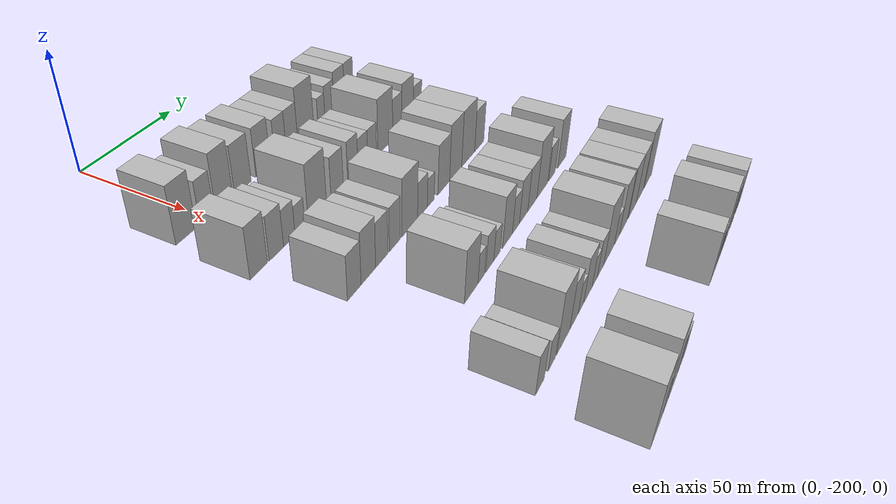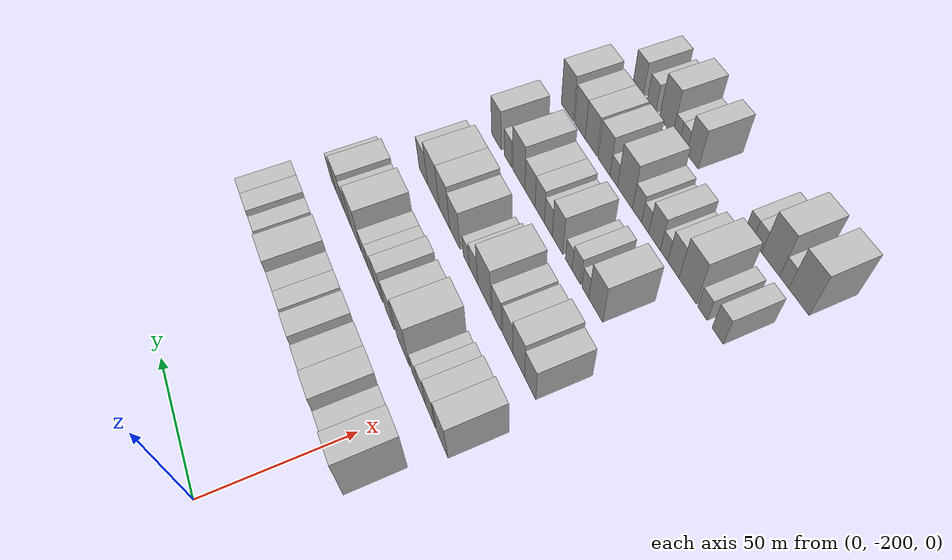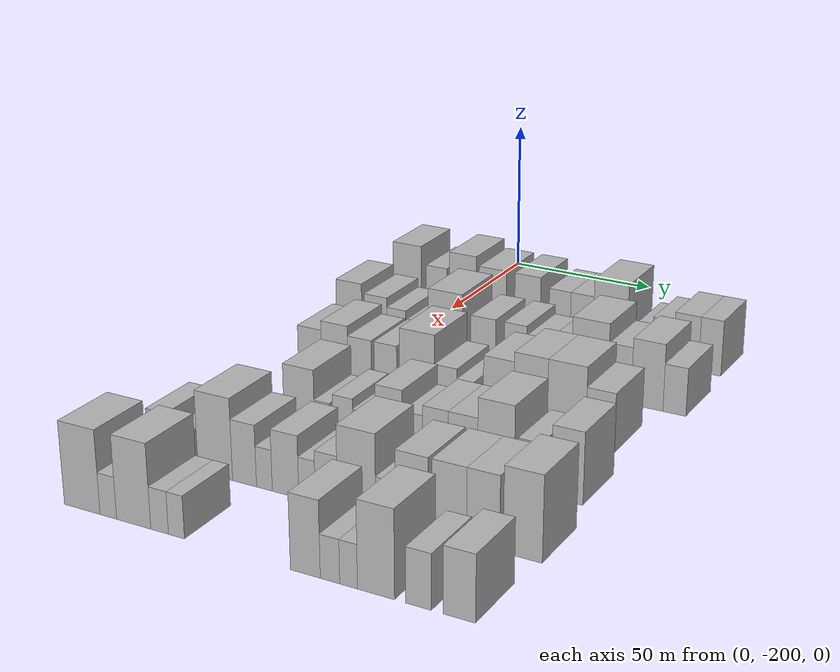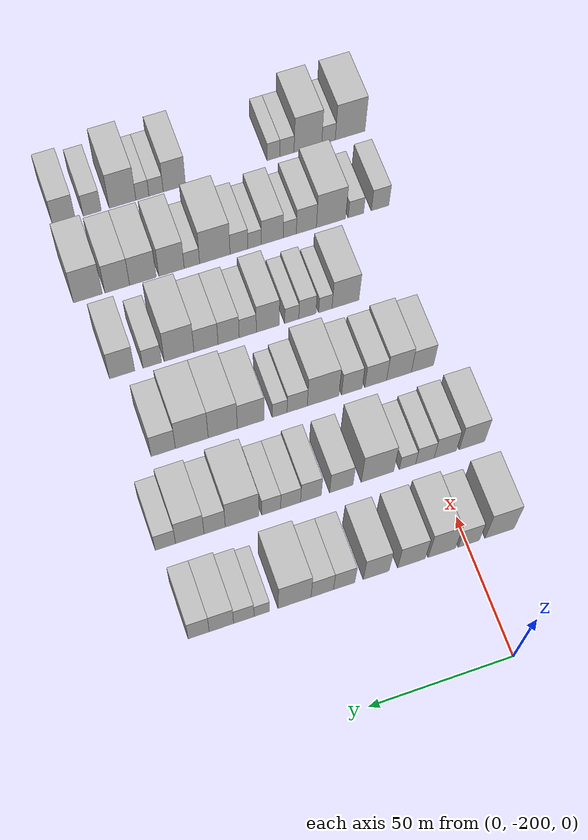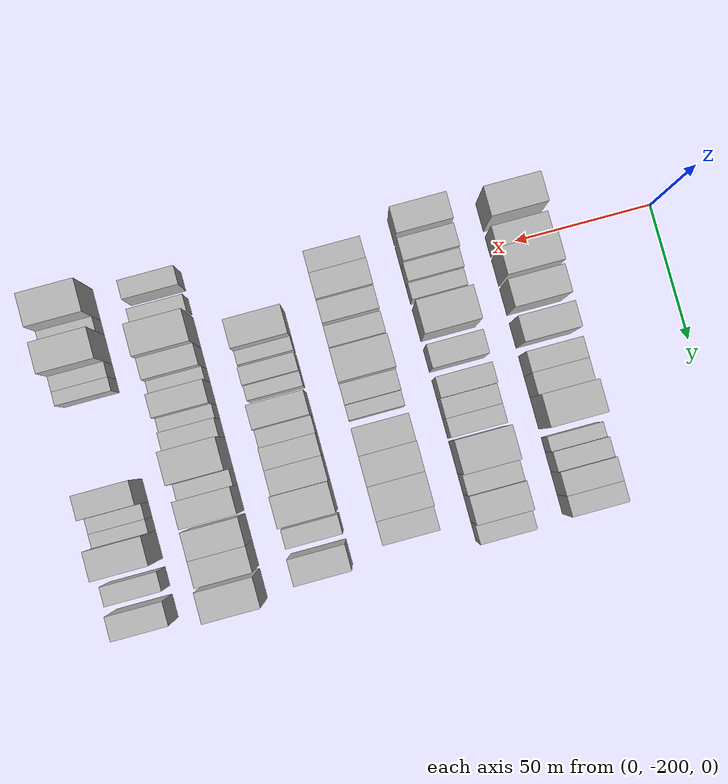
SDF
<sdf version="1.6">
 <world name="default">
  <model name="building_38">
   <static>1</static>
   <pose>50.0000 -211.4565 0 0.000000 0.000000 0.000000</pose>
   <link name="link">
    <pose>0 0 12.00 0 0 0</pose>
    <collision name="collision"><geometry><box><size>20.0000 10.4695 24.0000</size></box></geometry></collision>
    <visual name="visual">
     <cast_shadows>0</cast_shadows>
     <geometry><box><size>20.0000 10.4695 24.0000</size></box></geometry>
     <material>
      <script>
       <uri>model://HANNAS_wall/materials/scripts</uri>
       <uri>model://HANNAS_wall/materials/textures</uri>
       <name>vrc/HANNAS_wall</name>
      </script>
     </material>
    </visual>
   </link>
  </model>
  <model name="building_39">
   <static>1</static>
   <pose>50.0000 -200.4383 0 0.000000 0.000000 0.000000</pose>
   <link name="link">
    <pose>0 0 9.00 0 0 0</pose>
    <collision name="collision"><geometry><box><size>20.0000 7.5668 18.0000</size></box></geometry></collision>
    <visual name="visual">
     <cast_shadows>0</cast_shadows>
     <geometry><box><size>20.0000 7.5668 18.0000</size></box></geometry>
     <material>
      <script>
       <uri>model://HANNAS_wall/materials/scripts</uri>
       <uri>model://HANNAS_wall/materials/textures</uri>
       <name>vrc/HANNAS_wall</name>
      </script>
     </material>
    </visual>
   </link>
  </model>
  <model name="building_40">
   <static>1</static>
   <pose>50.0000 -190.7735 0 0.000000 0.000000 0.000000</pose>
   <link name="link">
    <pose>0 0 12.00 0 0 0</pose>
    <collision name="collision"><geometry><box><size>20.0000 9.7627 24.0000</size></box></geometry></collision>
    <visual name="visual">
     <cast_shadows>0</cast_shadows>
     <geometry><box><size>20.0000 9.7627 24.0000</size></box></geometry>
     <material>
      <script>
       <uri>model://HANNAS_wall/materials/scripts</uri>
       <uri>model://HANNAS_wall/materials/textures</uri>
       <name>vrc/HANNAS_wall</name>
      </script>
     </material>
    </visual>
   </link>
  </model>
  <model name="building_41">
   <static>1</static>
   <pose>50.0000 -179.9747 0 0.000000 0.000000 0.000000</pose>
   <link name="link">
    <pose>0 0 10.50 0 0 0</pose>
    <collision name="collision"><geometry><box><size>20.0000 9.8350 21.0000</size></box></geometry></collision>
    <visual name="visual">
     <cast_shadows>0</cast_shadows>
     <geometry><box><size>20.0000 9.8350 21.0000</size></box></geometry>
     <material>
      <script>
       <uri>model://HANNAS_wall/materials/scripts</uri>
       <uri>model://HANNAS_wall/materials/textures</uri>
       <name>vrc/HANNAS_wall</name>
      </script>
     </material>
    </visual>
   </link>
  </model>
  <model name="building_42">
   <static>1</static>
   <pose>50.0000 -167.4942 0 0.000000 0.000000 0.000000</pose>
   <link name="link">
    <pose>0 0 10.50 0 0 0</pose>
    <collision name="collision"><geometry><box><size>20.0000 9.1260 21.0000</size></box></geometry></collision>
    <visual name="visual">
     <cast_shadows>0</cast_shadows>
     <geometry><box><size>20.0000 9.1260 21.0000</size></box></geometry>
     <material>
      <script>
       <uri>model://HANNAS_wall/materials/scripts</uri>
       <uri>model://HANNAS_wall/materials/textures</uri>
       <name>vrc/HANNAS_wall</name>
      </script>
     </material>
    </visual>
   </link>
  </model>
  <model name="building_43">
   <static>1</static>
   <pose>50.0000 -156.1961 0 0.000000 0.000000 0.000000</pose>
   <link name="link">
    <pose>0 0 9.00 0 0 0</pose>
    <collision name="collision"><geometry><box><size>20.0000 7.4702 18.0000</size></box></geometry></collision>
    <visual name="visual">
     <cast_shadows>0</cast_shadows>
     <geometry><box><size>20.0000 7.4702 18.0000</size></box></geometry>
     <material>
      <script>
       <uri>model://HANNAS_wall/materials/scripts</uri>
       <uri>model://HANNAS_wall/materials/textures</uri>
       <name>vrc/HANNAS_wall</name>
      </script>
     </material>
    </visual>
   </link>
  </model>
  <model name="building_44">
   <static>1</static>
   <pose>50.0000 -148.5323 0 0.000000 0.000000 0.000000</pose>
   <link name="link">
    <pose>0 0 9.00 0 0 0</pose>
    <collision name="collision"><geometry><box><size>20.0000 7.8573 18.0000</size></box></geometry></collision>
    <visual name="visual">
     <cast_shadows>0</cast_shadows>
     <geometry><box><size>20.0000 7.8573 18.0000</size></box></geometry>
     <material>
      <script>
       <uri>model://HANNAS_wall/materials/scripts</uri>
       <uri>model://HANNAS_wall/materials/textures</uri>
       <name>vrc/HANNAS_wall</name>
      </script>
     </material>
    </visual>
   </link>
  </model>
  <model name="building_45">
   <static>1</static>
   <pose>50.0000 -138.8615 0 0.000000 0.000000 0.000000</pose>
   <link name="link">
    <pose>0 0 12.00 0 0 0</pose>
    <collision name="collision"><geometry><box><size>20.0000 11.4843 24.0000</size></box></geometry></collision>
    <visual name="visual">
     <cast_shadows>0</cast_shadows>
     <geometry><box><size>20.0000 11.4843 24.0000</size></box></geometry>
     <material>
      <script>
       <uri>model://HANNAS_wall/materials/scripts</uri>
       <uri>model://HANNAS_wall/materials/textures</uri>
       <name>vrc/HANNAS_wall</name>
      </script>
     </material>
    </visual>
   </link>
  </model>
  <model name="building_46">
   <static>1</static>
   <pose>50.0000 -127.4503 0 0.000000 0.000000 0.000000</pose>
   <link name="link">
    <pose>0 0 6.00 0 0 0</pose>
    <collision name="collision"><geometry><box><size>20.0000 5.3382 12.0000</size></box></geometry></collision>
    <visual name="visual">
     <cast_shadows>0</cast_shadows>
     <geometry><box><size>20.0000 5.3382 12.0000</size></box></geometry>
     <material>
      <script>
       <uri>model://HANNAS_wall/materials/scripts</uri>
       <uri>model://HANNAS_wall/materials/textures</uri>
       <name>vrc/HANNAS_wall</name>
      </script>
     </material>
    </visual>
   </link>
  </model>
  <model name="building_47">
   <static>1</static>
   <pose>50.0000 -121.2465 0 0.000000 0.000000 0.000000</pose>
   <link name="link">
    <pose>0 0 7.50 0 0 0</pose>
    <collision name="collision"><geometry><box><size>20.0000 7.0693 15.0000</size></box></geometry></collision>
    <visual name="visual">
     <cast_shadows>0</cast_shadows>
     <geometry><box><size>20.0000 7.0693 15.0000</size></box></geometry>
     <material>
      <script>
       <uri>model://HANNAS_wall/materials/scripts</uri>
       <uri>model://HANNAS_wall/materials/textures</uri>
       <name>vrc/HANNAS_wall</name>
      </script>
     </material>
    </visual>
   </link>
  </model>
  <model name="building_48">
   <static>1</static>
   <pose>50.0000 -113.5370 0 0.000000 0.000000 0.000000</pose>
   <link name="link">
    <pose>0 0 9.00 0 0 0</pose>
    <collision name="collision"><geometry><box><size>20.0000 8.3497 18.0000</size></box></geometry></collision>
    <visual name="visual">
     <cast_shadows>0</cast_shadows>
     <geometry><box><size>20.0000 8.3497 18.0000</size></box></geometry>
     <material>
      <script>
       <uri>model://HANNAS_wall/materials/scripts</uri>
       <uri>model://HANNAS_wall/materials/textures</uri>
       <name>vrc/HANNAS_wall</name>
      </script>
     </material>
    </visual>
   </link>
  </model>
  <model name="building_49">
   <static>1</static>
   <pose>50.0000 -105.7563 0 0.000000 0.000000 0.000000</pose>
   <link name="link">
    <pose>0 0 9.00 0 0 0</pose>
    <collision name="collision"><geometry><box><size>20.0000 7.2116 18.0000</size></box></geometry></collision>
    <visual name="visual">
     <cast_shadows>0</cast_shadows>
     <geometry><box><size>20.0000 7.2116 18.0000</size></box></geometry>
     <material>
      <script>
       <uri>model://HANNAS_wall/materials/scripts</uri>
       <uri>model://HANNAS_wall/materials/textures</uri>
       <name>vrc/HANNAS_wall</name>
      </script>
     </material>
    </visual>
   </link>
  </model>
  <model name="building_156">
   <static>1</static>
   <pose>82.0000 -214.3716 0 0.000000 0.000000 0.000000</pose>
   <link name="link">
    <pose>0 0 10.50 0 0 0</pose>
    <collision name="collision"><geometry><box><size>20.0000 9.3521 21.0000</size></box></geometry></collision>
    <visual name="visual">
     <cast_shadows>0</cast_shadows>
     <geometry><box><size>20.0000 9.3521 21.0000</size></box></geometry>
     <material>
      <script>
       <uri>model://HANNAS_wall/materials/scripts</uri>
       <uri>model://HANNAS_wall/materials/textures</uri>
       <name>vrc/HANNAS_wall</name>
      </script>
     </material>
    </visual>
   </link>
  </model>
  <model name="building_157">
   <static>1</static>
   <pose>82.0000 -204.6196 0 0.000000 0.000000 0.000000</pose>
   <link name="link">
    <pose>0 0 9.00 0 0 0</pose>
    <collision name="collision"><geometry><box><size>20.0000 8.1518 18.0000</size></box></geometry></collision>
    <visual name="visual">
     <cast_shadows>0</cast_shadows>
     <geometry><box><size>20.0000 8.1518 18.0000</size></box></geometry>
     <material>
      <script>
       <uri>model://HANNAS_wall/materials/scripts</uri>
       <uri>model://HANNAS_wall/materials/textures</uri>
       <name>vrc/HANNAS_wall</name>
      </script>
     </material>
    </visual>
   </link>
  </model>
  <model name="building_158">
   <static>1</static>
   <pose>82.0000 -197.1738 0 0.000000 0.000000 0.000000</pose>
   <link name="link">
    <pose>0 0 7.50 0 0 0</pose>
    <collision name="collision"><geometry><box><size>20.0000 6.7398 15.0000</size></box></geometry></collision>
    <visual name="visual">
     <cast_shadows>0</cast_shadows>
     <geometry><box><size>20.0000 6.7398 15.0000</size></box></geometry>
     <material>
      <script>
       <uri>model://HANNAS_wall/materials/scripts</uri>
       <uri>model://HANNAS_wall/materials/textures</uri>
       <name>vrc/HANNAS_wall</name>
      </script>
     </material>
    </visual>
   </link>
  </model>
  <model name="building_159">
   <static>1</static>
   <pose>82.0000 -190.8170 0 0.000000 0.000000 0.000000</pose>
   <link name="link">
    <pose>0 0 6.00 0 0 0</pose>
    <collision name="collision"><geometry><box><size>20.0000 5.9738 12.0000</size></box></geometry></collision>
    <visual name="visual">
     <cast_shadows>0</cast_shadows>
     <geometry><box><size>20.0000 5.9738 12.0000</size></box></geometry>
     <material>
      <script>
       <uri>model://HANNAS_wall/materials/scripts</uri>
       <uri>model://HANNAS_wall/materials/textures</uri>
       <name>vrc/HANNAS_wall</name>
      </script>
     </material>
    </visual>
   </link>
  </model>
  <model name="building_160">
   <static>1</static>
   <pose>82.0000 -179.9579 0 0.000000 0.000000 0.000000</pose>
   <link name="link">
    <pose>0 0 12.00 0 0 0</pose>
    <collision name="collision"><geometry><box><size>20.0000 11.7444 24.0000</size></box></geometry></collision>
    <visual name="visual">
     <cast_shadows>0</cast_shadows>
     <geometry><box><size>20.0000 11.7444 24.0000</size></box></geometry>
     <material>
      <script>
       <uri>model://HANNAS_wall/materials/scripts</uri>
       <uri>model://HANNAS_wall/materials/textures</uri>
       <name>vrc/HANNAS_wall</name>
      </script>
     </material>
    </visual>
   </link>
  </model>
  <model name="building_161">
   <static>1</static>
   <pose>82.0000 -166.8854 0 0.000000 0.000000 0.000000</pose>
   <link name="link">
    <pose>0 0 9.00 0 0 0</pose>
    <collision name="collision"><geometry><box><size>20.0000 8.4005 18.0000</size></box></geometry></collision>
    <visual name="visual">
     <cast_shadows>0</cast_shadows>
     <geometry><box><size>20.0000 8.4005 18.0000</size></box></geometry>
     <material>
      <script>
       <uri>model://HANNAS_wall/materials/scripts</uri>
       <uri>model://HANNAS_wall/materials/textures</uri>
       <name>vrc/HANNAS_wall</name>
      </script>
     </material>
    </visual>
   </link>
  </model>
  <model name="building_162">
   <static>1</static>
   <pose>82.0000 -155.9896 0 0.000000 0.000000 0.000000</pose>
   <link name="link">
    <pose>0 0 9.00 0 0 0</pose>
    <collision name="collision"><geometry><box><size>20.0000 7.3910 18.0000</size></box></geometry></collision>
    <visual name="visual">
     <cast_shadows>0</cast_shadows>
     <geometry><box><size>20.0000 7.3910 18.0000</size></box></geometry>
     <material>
      <script>
       <uri>model://HANNAS_wall/materials/scripts</uri>
       <uri>model://HANNAS_wall/materials/textures</uri>
       <name>vrc/HANNAS_wall</name>
      </script>
     </material>
    </visual>
   </link>
  </model>
  <model name="building_163">
   <static>1</static>
   <pose>82.0000 -148.7459 0 0.000000 0.000000 0.000000</pose>
   <link name="link">
    <pose>0 0 7.50 0 0 0</pose>
    <collision name="collision"><geometry><box><size>20.0000 7.0965 15.0000</size></box></geometry></collision>
    <visual name="visual">
     <cast_shadows>0</cast_shadows>
     <geometry><box><size>20.0000 7.0965 15.0000</size></box></geometry>
     <material>
      <script>
       <uri>model://HANNAS_wall/materials/scripts</uri>
       <uri>model://HANNAS_wall/materials/textures</uri>
       <name>vrc/HANNAS_wall</name>
      </script>
     </material>
    </visual>
   </link>
  </model>
  <model name="building_164">
   <static>1</static>
   <pose>82.0000 -141.8310 0 0.000000 0.000000 0.000000</pose>
   <link name="link">
    <pose>0 0 7.50 0 0 0</pose>
    <collision name="collision"><geometry><box><size>20.0000 6.7332 15.0000</size></box></geometry></collision>
    <visual name="visual">
     <cast_shadows>0</cast_shadows>
     <geometry><box><size>20.0000 6.7332 15.0000</size></box></geometry>
     <material>
      <script>
       <uri>model://HANNAS_wall/materials/scripts</uri>
       <uri>model://HANNAS_wall/materials/textures</uri>
       <name>vrc/HANNAS_wall</name>
      </script>
     </material>
    </visual>
   </link>
  </model>
  <model name="building_165">
   <static>1</static>
   <pose>82.0000 -131.5374 0 0.000000 0.000000 0.000000</pose>
   <link name="link">
    <pose>0 0 12.00 0 0 0</pose>
    <collision name="collision"><geometry><box><size>20.0000 11.8540 24.0000</size></box></geometry></collision>
    <visual name="visual">
     <cast_shadows>0</cast_shadows>
     <geometry><box><size>20.0000 11.8540 24.0000</size></box></geometry>
     <material>
      <script>
       <uri>model://HANNAS_wall/materials/scripts</uri>
       <uri>model://HANNAS_wall/materials/textures</uri>
       <name>vrc/HANNAS_wall</name>
      </script>
     </material>
    </visual>
   </link>
  </model>
  <model name="building_166">
   <static>1</static>
   <pose>82.0000 -121.8860 0 0.000000 0.000000 0.000000</pose>
   <link name="link">
    <pose>0 0 9.00 0 0 0</pose>
    <collision name="collision"><geometry><box><size>20.0000 7.4489 18.0000</size></box></geometry></collision>
    <visual name="visual">
     <cast_shadows>0</cast_shadows>
     <geometry><box><size>20.0000 7.4489 18.0000</size></box></geometry>
     <material>
      <script>
       <uri>model://HANNAS_wall/materials/scripts</uri>
       <uri>model://HANNAS_wall/materials/textures</uri>
       <name>vrc/HANNAS_wall</name>
      </script>
     </material>
    </visual>
   </link>
  </model>
  <model name="building_167">
   <static>1</static>
   <pose>82.0000 -113.1577 0 0.000000 0.000000 0.000000</pose>
   <link name="link">
    <pose>0 0 10.50 0 0 0</pose>
    <collision name="collision"><geometry><box><size>20.0000 10.0077 21.0000</size></box></geometry></collision>
    <visual name="visual">
     <cast_shadows>0</cast_shadows>
     <geometry><box><size>20.0000 10.0077 21.0000</size></box></geometry>
     <material>
      <script>
       <uri>model://HANNAS_wall/materials/scripts</uri>
       <uri>model://HANNAS_wall/materials/textures</uri>
       <name>vrc/HANNAS_wall</name>
      </script>
     </material>
    </visual>
   </link>
  </model>
  <model name="building_168">
   <static>1</static>
   <pose>82.0000 -104.5958 0 0.000000 0.000000 0.000000</pose>
   <link name="link">
    <pose>0 0 7.50 0 0 0</pose>
    <collision name="collision"><geometry><box><size>20.0000 7.1160 15.0000</size></box></geometry></collision>
    <visual name="visual">
     <cast_shadows>0</cast_shadows>
     <geometry><box><size>20.0000 7.1160 15.0000</size></box></geometry>
     <material>
      <script>
       <uri>model://HANNAS_wall/materials/scripts</uri>
       <uri>model://HANNAS_wall/materials/textures</uri>
       <name>vrc/HANNAS_wall</name>
      </script>
     </material>
    </visual>
   </link>
  </model>
  <model name="building_280">
   <static>1</static>
   <pose>114.0000 -208.6316 0 0.000000 0.000000 0.000000</pose>
   <link name="link">
    <pose>0 0 9.00 0 0 0</pose>
    <collision name="collision"><geometry><box><size>20.0000 8.2622 18.0000</size></box></geometry></collision>
    <visual name="visual">
     <cast_shadows>0</cast_shadows>
     <geometry><box><size>20.0000 8.2622 18.0000</size></box></geometry>
     <material>
      <script>
       <uri>model://HANNAS_wall/materials/scripts</uri>
       <uri>model://HANNAS_wall/materials/textures</uri>
       <name>vrc/HANNAS_wall</name>
      </script>
     </material>
    </visual>
   </link>
  </model>
  <model name="building_281">
   <static>1</static>
   <pose>114.0000 -199.9115 0 0.000000 0.000000 0.000000</pose>
   <link name="link">
    <pose>0 0 10.50 0 0 0</pose>
    <collision name="collision"><geometry><box><size>20.0000 9.1779 21.0000</size></box></geometry></collision>
    <visual name="visual">
     <cast_shadows>0</cast_shadows>
     <geometry><box><size>20.0000 9.1779 21.0000</size></box></geometry>
     <material>
      <script>
       <uri>model://HANNAS_wall/materials/scripts</uri>
       <uri>model://HANNAS_wall/materials/textures</uri>
       <name>vrc/HANNAS_wall</name>
      </script>
     </material>
    </visual>
   </link>
  </model>
  <model name="building_282">
   <static>1</static>
   <pose>114.0000 -191.2991 0 0.000000 0.000000 0.000000</pose>
   <link name="link">
    <pose>0 0 9.00 0 0 0</pose>
    <collision name="collision"><geometry><box><size>20.0000 8.0470 18.0000</size></box></geometry></collision>
    <visual name="visual">
     <cast_shadows>0</cast_shadows>
     <geometry><box><size>20.0000 8.0470 18.0000</size></box></geometry>
     <material>
      <script>
       <uri>model://HANNAS_wall/materials/scripts</uri>
       <uri>model://HANNAS_wall/materials/textures</uri>
       <name>vrc/HANNAS_wall</name>
      </script>
     </material>
    </visual>
   </link>
  </model>
  <model name="building_283">
   <static>1</static>
   <pose>114.0000 -182.4864 0 0.000000 0.000000 0.000000</pose>
   <link name="link">
    <pose>0 0 9.00 0 0 0</pose>
    <collision name="collision"><geometry><box><size>20.0000 7.5783 18.0000</size></box></geometry></collision>
    <visual name="visual">
     <cast_shadows>0</cast_shadows>
     <geometry><box><size>20.0000 7.5783 18.0000</size></box></geometry>
     <material>
      <script>
       <uri>model://HANNAS_wall/materials/scripts</uri>
       <uri>model://HANNAS_wall/materials/textures</uri>
       <name>vrc/HANNAS_wall</name>
      </script>
     </material>
    </visual>
   </link>
  </model>
  <model name="building_284">
   <static>1</static>
   <pose>114.0000 -171.9044 0 0.000000 0.000000 0.000000</pose>
   <link name="link">
    <pose>0 0 12.00 0 0 0</pose>
    <collision name="collision"><geometry><box><size>20.0000 11.5858 24.0000</size></box></geometry></collision>
    <visual name="visual">
     <cast_shadows>0</cast_shadows>
     <geometry><box><size>20.0000 11.5858 24.0000</size></box></geometry>
     <material>
      <script>
       <uri>model://HANNAS_wall/materials/scripts</uri>
       <uri>model://HANNAS_wall/materials/textures</uri>
       <name>vrc/HANNAS_wall</name>
      </script>
     </material>
    </visual>
   </link>
  </model>
  <model name="building_285">
   <static>1</static>
   <pose>114.0000 -162.4385 0 0.000000 0.000000 0.000000</pose>
   <link name="link">
    <pose>0 0 7.50 0 0 0</pose>
    <collision name="collision"><geometry><box><size>20.0000 7.3460 15.0000</size></box></geometry></collision>
    <visual name="visual">
     <cast_shadows>0</cast_shadows>
     <geometry><box><size>20.0000 7.3460 15.0000</size></box></geometry>
     <material>
      <script>
       <uri>model://HANNAS_wall/materials/scripts</uri>
       <uri>model://HANNAS_wall/materials/textures</uri>
       <name>vrc/HANNAS_wall</name>
      </script>
     </material>
    </visual>
   </link>
  </model>
  <model name="building_286">
   <static>1</static>
   <pose>114.0000 -156.0570 0 0.000000 0.000000 0.000000</pose>
   <link name="link">
    <pose>0 0 6.00 0 0 0</pose>
    <collision name="collision"><geometry><box><size>20.0000 5.4169 12.0000</size></box></geometry></collision>
    <visual name="visual">
     <cast_shadows>0</cast_shadows>
     <geometry><box><size>20.0000 5.4169 12.0000</size></box></geometry>
     <material>
      <script>
       <uri>model://HANNAS_wall/materials/scripts</uri>
       <uri>model://HANNAS_wall/materials/textures</uri>
       <name>vrc/HANNAS_wall</name>
      </script>
     </material>
    </visual>
   </link>
  </model>
  <model name="building_287">
   <static>1</static>
   <pose>114.0000 -145.5136 0 0.000000 0.000000 0.000000</pose>
   <link name="link">
    <pose>0 0 10.50 0 0 0</pose>
    <collision name="collision"><geometry><box><size>20.0000 9.6700 21.0000</size></box></geometry></collision>
    <visual name="visual">
     <cast_shadows>0</cast_shadows>
     <geometry><box><size>20.0000 9.6700 21.0000</size></box></geometry>
     <material>
      <script>
       <uri>model://HANNAS_wall/materials/scripts</uri>
       <uri>model://HANNAS_wall/materials/textures</uri>
       <name>vrc/HANNAS_wall</name>
      </script>
     </material>
    </visual>
   </link>
  </model>
  <model name="building_288">
   <static>1</static>
   <pose>114.0000 -135.4417 0 0.000000 0.000000 0.000000</pose>
   <link name="link">
    <pose>0 0 12.00 0 0 0</pose>
    <collision name="collision"><geometry><box><size>20.0000 10.4738 24.0000</size></box></geometry></collision>
    <visual name="visual">
     <cast_shadows>0</cast_shadows>
     <geometry><box><size>20.0000 10.4738 24.0000</size></box></geometry>
     <material>
      <script>
       <uri>model://HANNAS_wall/materials/scripts</uri>
       <uri>model://HANNAS_wall/materials/textures</uri>
       <name>vrc/HANNAS_wall</name>
      </script>
     </material>
    </visual>
   </link>
  </model>
  <model name="building_289">
   <static>1</static>
   <pose>114.0000 -124.3099 0 0.000000 0.000000 0.000000</pose>
   <link name="link">
    <pose>0 0 12.00 0 0 0</pose>
    <collision name="collision"><geometry><box><size>20.0000 11.7898 24.0000</size></box></geometry></collision>
    <visual name="visual">
     <cast_shadows>0</cast_shadows>
     <geometry><box><size>20.0000 11.7898 24.0000</size></box></geometry>
     <material>
      <script>
       <uri>model://HANNAS_wall/materials/scripts</uri>
       <uri>model://HANNAS_wall/materials/textures</uri>
       <name>vrc/HANNAS_wall</name>
      </script>
     </material>
    </visual>
   </link>
  </model>
  <model name="building_290">
   <static>1</static>
   <pose>114.0000 -114.0748 0 0.000000 0.000000 0.000000</pose>
   <link name="link">
    <pose>0 0 9.00 0 0 0</pose>
    <collision name="collision"><geometry><box><size>20.0000 8.6804 18.0000</size></box></geometry></collision>
    <visual name="visual">
     <cast_shadows>0</cast_shadows>
     <geometry><box><size>20.0000 8.6804 18.0000</size></box></geometry>
     <material>
      <script>
       <uri>model://HANNAS_wall/materials/scripts</uri>
       <uri>model://HANNAS_wall/materials/textures</uri>
       <name>vrc/HANNAS_wall</name>
      </script>
     </material>
    </visual>
   </link>
  </model>
  <model name="building_399">
   <static>1</static>
   <pose>146.0000 -191.8766 0 0.000000 0.000000 0.000000</pose>
   <link name="link">
    <pose>0 0 10.50 0 0 0</pose>
    <collision name="collision"><geometry><box><size>20.0000 10.1219 21.0000</size></box></geometry></collision>
    <visual name="visual">
     <cast_shadows>0</cast_shadows>
     <geometry><box><size>20.0000 10.1219 21.0000</size></box></geometry>
     <material>
      <script>
       <uri>model://HANNAS_wall/materials/scripts</uri>
       <uri>model://HANNAS_wall/materials/textures</uri>
       <name>vrc/HANNAS_wall</name>
      </script>
     </material>
    </visual>
   </link>
  </model>
  <model name="building_400">
   <static>1</static>
   <pose>146.0000 -184.3137 0 0.000000 0.000000 0.000000</pose>
   <link name="link">
    <pose>0 0 6.00 0 0 0</pose>
    <collision name="collision"><geometry><box><size>20.0000 5.0039 12.0000</size></box></geometry></collision>
    <visual name="visual">
     <cast_shadows>0</cast_shadows>
     <geometry><box><size>20.0000 5.0039 12.0000</size></box></geometry>
     <material>
      <script>
       <uri>model://HANNAS_wall/materials/scripts</uri>
       <uri>model://HANNAS_wall/materials/textures</uri>
       <name>vrc/HANNAS_wall</name>
      </script>
     </material>
    </visual>
   </link>
  </model>
  <model name="building_401">
   <static>1</static>
   <pose>146.0000 -177.5903 0 0.000000 0.000000 0.000000</pose>
   <link name="link">
    <pose>0 0 7.50 0 0 0</pose>
    <collision name="collision"><geometry><box><size>20.0000 6.4430 15.0000</size></box></geometry></collision>
    <visual name="visual">
     <cast_shadows>0</cast_shadows>
     <geometry><box><size>20.0000 6.4430 15.0000</size></box></geometry>
     <material>
      <script>
       <uri>model://HANNAS_wall/materials/scripts</uri>
       <uri>model://HANNAS_wall/materials/textures</uri>
       <name>vrc/HANNAS_wall</name>
      </script>
     </material>
    </visual>
   </link>
  </model>
  <model name="building_402">
   <static>1</static>
   <pose>146.0000 -171.7303 0 0.000000 0.000000 0.000000</pose>
   <link name="link">
    <pose>0 0 6.00 0 0 0</pose>
    <collision name="collision"><geometry><box><size>20.0000 5.2770 12.0000</size></box></geometry></collision>
    <visual name="visual">
     <cast_shadows>0</cast_shadows>
     <geometry><box><size>20.0000 5.2770 12.0000</size></box></geometry>
     <material>
      <script>
       <uri>model://HANNAS_wall/materials/scripts</uri>
       <uri>model://HANNAS_wall/materials/textures</uri>
       <name>vrc/HANNAS_wall</name>
      </script>
     </material>
    </visual>
   </link>
  </model>
  <model name="building_403">
   <static>1</static>
   <pose>146.0000 -162.8242 0 0.000000 0.000000 0.000000</pose>
   <link name="link">
    <pose>0 0 10.50 0 0 0</pose>
    <collision name="collision"><geometry><box><size>20.0000 8.5352 21.0000</size></box></geometry></collision>
    <visual name="visual">
     <cast_shadows>0</cast_shadows>
     <geometry><box><size>20.0000 8.5352 21.0000</size></box></geometry>
     <material>
      <script>
       <uri>model://HANNAS_wall/materials/scripts</uri>
       <uri>model://HANNAS_wall/materials/textures</uri>
       <name>vrc/HANNAS_wall</name>
      </script>
     </material>
    </visual>
   </link>
  </model>
  <model name="building_404">
   <static>1</static>
   <pose>146.0000 -155.3909 0 0.000000 0.000000 0.000000</pose>
   <link name="link">
    <pose>0 0 7.50 0 0 0</pose>
    <collision name="collision"><geometry><box><size>20.0000 6.3313 15.0000</size></box></geometry></collision>
    <visual name="visual">
     <cast_shadows>0</cast_shadows>
     <geometry><box><size>20.0000 6.3313 15.0000</size></box></geometry>
     <material>
      <script>
       <uri>model://HANNAS_wall/materials/scripts</uri>
       <uri>model://HANNAS_wall/materials/textures</uri>
       <name>vrc/HANNAS_wall</name>
      </script>
     </material>
    </visual>
   </link>
  </model>
  <model name="building_405">
   <static>1</static>
   <pose>146.0000 -148.3162 0 0.000000 0.000000 0.000000</pose>
   <link name="link">
    <pose>0 0 9.00 0 0 0</pose>
    <collision name="collision"><geometry><box><size>20.0000 7.8180 18.0000</size></box></geometry></collision>
    <visual name="visual">
     <cast_shadows>0</cast_shadows>
     <geometry><box><size>20.0000 7.8180 18.0000</size></box></geometry>
     <material>
      <script>
       <uri>model://HANNAS_wall/materials/scripts</uri>
       <uri>model://HANNAS_wall/materials/textures</uri>
       <name>vrc/HANNAS_wall</name>
      </script>
     </material>
    </visual>
   </link>
  </model>
  <model name="building_406">
   <static>1</static>
   <pose>146.0000 -139.9772 0 0.000000 0.000000 0.000000</pose>
   <link name="link">
    <pose>0 0 9.00 0 0 0</pose>
    <collision name="collision"><geometry><box><size>20.0000 8.8600 18.0000</size></box></geometry></collision>
    <visual name="visual">
     <cast_shadows>0</cast_shadows>
     <geometry><box><size>20.0000 8.8600 18.0000</size></box></geometry>
     <material>
      <script>
       <uri>model://HANNAS_wall/materials/scripts</uri>
       <uri>model://HANNAS_wall/materials/textures</uri>
       <name>vrc/HANNAS_wall</name>
      </script>
     </material>
    </visual>
   </link>
  </model>
  <model name="building_407">
   <static>1</static>
   <pose>146.0000 -130.1047 0 0.000000 0.000000 0.000000</pose>
   <link name="link">
    <pose>0 0 12.00 0 0 0</pose>
    <collision name="collision"><geometry><box><size>20.0000 10.8850 24.0000</size></box></geometry></collision>
    <visual name="visual">
     <cast_shadows>0</cast_shadows>
     <geometry><box><size>20.0000 10.8850 24.0000</size></box></geometry>
     <material>
      <script>
       <uri>model://HANNAS_wall/materials/scripts</uri>
       <uri>model://HANNAS_wall/materials/textures</uri>
       <name>vrc/HANNAS_wall</name>
      </script>
     </material>
    </visual>
   </link>
  </model>
  <model name="building_408">
   <static>1</static>
   <pose>146.0000 -120.2781 0 0.000000 0.000000 0.000000</pose>
   <link name="link">
    <pose>0 0 7.50 0 0 0</pose>
    <collision name="collision"><geometry><box><size>20.0000 6.7683 15.0000</size></box></geometry></collision>
    <visual name="visual">
     <cast_shadows>0</cast_shadows>
     <geometry><box><size>20.0000 6.7683 15.0000</size></box></geometry>
     <material>
      <script>
       <uri>model://HANNAS_wall/materials/scripts</uri>
       <uri>model://HANNAS_wall/materials/textures</uri>
       <name>vrc/HANNAS_wall</name>
      </script>
     </material>
    </visual>
   </link>
  </model>
  <model name="building_409">
   <static>1</static>
   <pose>146.0000 -109.3045 0 0.000000 0.000000 0.000000</pose>
   <link name="link">
    <pose>0 0 10.50 0 0 0</pose>
    <collision name="collision"><geometry><box><size>20.0000 9.1788 21.0000</size></box></geometry></collision>
    <visual name="visual">
     <cast_shadows>0</cast_shadows>
     <geometry><box><size>20.0000 9.1788 21.0000</size></box></geometry>
     <material>
      <script>
       <uri>model://HANNAS_wall/materials/scripts</uri>
       <uri>model://HANNAS_wall/materials/textures</uri>
       <name>vrc/HANNAS_wall</name>
      </script>
     </material>
    </visual>
   </link>
  </model>
  <model name="building_516">
   <static>1</static>
   <pose>178.0000 -217.0044 0 0.000000 0.000000 0.000000</pose>
   <link name="link">
    <pose>0 0 7.50 0 0 0</pose>
    <collision name="collision"><geometry><box><size>20.0000 6.7690 15.0000</size></box></geometry></collision>
    <visual name="visual">
     <cast_shadows>0</cast_shadows>
     <geometry><box><size>20.0000 6.7690 15.0000</size></box></geometry>
     <material>
      <script>
       <uri>model://HANNAS_wall/materials/scripts</uri>
       <uri>model://HANNAS_wall/materials/textures</uri>
       <name>vrc/HANNAS_wall</name>
      </script>
     </material>
    </visual>
   </link>
  </model>
  <model name="building_517">
   <static>1</static>
   <pose>178.0000 -207.6560 0 0.000000 0.000000 0.000000</pose>
   <link name="link">
    <pose>0 0 6.00 0 0 0</pose>
    <collision name="collision"><geometry><box><size>20.0000 5.9277 12.0000</size></box></geometry></collision>
    <visual name="visual">
     <cast_shadows>0</cast_shadows>
     <geometry><box><size>20.0000 5.9277 12.0000</size></box></geometry>
     <material>
      <script>
       <uri>model://HANNAS_wall/materials/scripts</uri>
       <uri>model://HANNAS_wall/materials/textures</uri>
       <name>vrc/HANNAS_wall</name>
      </script>
     </material>
    </visual>
   </link>
  </model>
  <model name="building_518">
   <static>1</static>
   <pose>178.0000 -198.0734 0 0.000000 0.000000 0.000000</pose>
   <link name="link">
    <pose>0 0 12.00 0 0 0</pose>
    <collision name="collision"><geometry><box><size>20.0000 11.2375 24.0000</size></box></geometry></collision>
    <visual name="visual">
     <cast_shadows>0</cast_shadows>
     <geometry><box><size>20.0000 11.2375 24.0000</size></box></geometry>
     <material>
      <script>
       <uri>model://HANNAS_wall/materials/scripts</uri>
       <uri>model://HANNAS_wall/materials/textures</uri>
       <name>vrc/HANNAS_wall</name>
      </script>
     </material>
    </visual>
   </link>
  </model>
  <model name="building_519">
   <static>1</static>
   <pose>178.0000 -188.6207 0 0.000000 0.000000 0.000000</pose>
   <link name="link">
    <pose>0 0 9.00 0 0 0</pose>
    <collision name="collision"><geometry><box><size>20.0000 7.6679 18.0000</size></box></geometry></collision>
    <visual name="visual">
     <cast_shadows>0</cast_shadows>
     <geometry><box><size>20.0000 7.6679 18.0000</size></box></geometry>
     <material>
      <script>
       <uri>model://HANNAS_wall/materials/scripts</uri>
       <uri>model://HANNAS_wall/materials/textures</uri>
       <name>vrc/HANNAS_wall</name>
      </script>
     </material>
    </visual>
   </link>
  </model>
  <model name="building_520">
   <static>1</static>
   <pose>178.0000 -182.2872 0 0.000000 0.000000 0.000000</pose>
   <link name="link">
    <pose>0 0 6.00 0 0 0</pose>
    <collision name="collision"><geometry><box><size>20.0000 4.9989 12.0000</size></box></geometry></collision>
    <visual name="visual">
     <cast_shadows>0</cast_shadows>
     <geometry><box><size>20.0000 4.9989 12.0000</size></box></geometry>
     <material>
      <script>
       <uri>model://HANNAS_wall/materials/scripts</uri>
       <uri>model://HANNAS_wall/materials/textures</uri>
       <name>vrc/HANNAS_wall</name>
      </script>
     </material>
    </visual>
   </link>
  </model>
  <model name="building_521">
   <static>1</static>
   <pose>178.0000 -175.6355 0 0.000000 0.000000 0.000000</pose>
   <link name="link">
    <pose>0 0 9.00 0 0 0</pose>
    <collision name="collision"><geometry><box><size>20.0000 8.3046 18.0000</size></box></geometry></collision>
    <visual name="visual">
     <cast_shadows>0</cast_shadows>
     <geometry><box><size>20.0000 8.3046 18.0000</size></box></geometry>
     <material>
      <script>
       <uri>model://HANNAS_wall/materials/scripts</uri>
       <uri>model://HANNAS_wall/materials/textures</uri>
       <name>vrc/HANNAS_wall</name>
      </script>
     </material>
    </visual>
   </link>
  </model>
  <model name="building_522">
   <static>1</static>
   <pose>178.0000 -168.9238 0 0.000000 0.000000 0.000000</pose>
   <link name="link">
    <pose>0 0 6.00 0 0 0</pose>
    <collision name="collision"><geometry><box><size>20.0000 5.1188 12.0000</size></box></geometry></collision>
    <visual name="visual">
     <cast_shadows>0</cast_shadows>
     <geometry><box><size>20.0000 5.1188 12.0000</size></box></geometry>
     <material>
      <script>
       <uri>model://HANNAS_wall/materials/scripts</uri>
       <uri>model://HANNAS_wall/materials/textures</uri>
       <name>vrc/HANNAS_wall</name>
      </script>
     </material>
    </visual>
   </link>
  </model>
  <model name="building_523">
   <static>1</static>
   <pose>178.0000 -162.9809 0 0.000000 0.000000 0.000000</pose>
   <link name="link">
    <pose>0 0 7.50 0 0 0</pose>
    <collision name="collision"><geometry><box><size>20.0000 6.7670 15.0000</size></box></geometry></collision>
    <visual name="visual">
     <cast_shadows>0</cast_shadows>
     <geometry><box><size>20.0000 6.7670 15.0000</size></box></geometry>
     <material>
      <script>
       <uri>model://HANNAS_wall/materials/scripts</uri>
       <uri>model://HANNAS_wall/materials/textures</uri>
       <name>vrc/HANNAS_wall</name>
      </script>
     </material>
    </visual>
   </link>
  </model>
  <model name="building_524">
   <static>1</static>
   <pose>178.0000 -153.8749 0 0.000000 0.000000 0.000000</pose>
   <link name="link">
    <pose>0 0 12.00 0 0 0</pose>
    <collision name="collision"><geometry><box><size>20.0000 11.4449 24.0000</size></box></geometry></collision>
    <visual name="visual">
     <cast_shadows>0</cast_shadows>
     <geometry><box><size>20.0000 11.4449 24.0000</size></box></geometry>
     <material>
      <script>
       <uri>model://HANNAS_wall/materials/scripts</uri>
       <uri>model://HANNAS_wall/materials/textures</uri>
       <name>vrc/HANNAS_wall</name>
      </script>
     </material>
    </visual>
   </link>
  </model>
  <model name="building_525">
   <static>1</static>
   <pose>178.0000 -145.2540 0 0.000000 0.000000 0.000000</pose>
   <link name="link">
    <pose>0 0 6.00 0 0 0</pose>
    <collision name="collision"><geometry><box><size>20.0000 5.7970 12.0000</size></box></geometry></collision>
    <visual name="visual">
     <cast_shadows>0</cast_shadows>
     <geometry><box><size>20.0000 5.7970 12.0000</size></box></geometry>
     <material>
      <script>
       <uri>model://HANNAS_wall/materials/scripts</uri>
       <uri>model://HANNAS_wall/materials/textures</uri>
       <name>vrc/HANNAS_wall</name>
      </script>
     </material>
    </visual>
   </link>
  </model>
  <model name="building_526">
   <static>1</static>
   <pose>178.0000 -137.6061 0 0.000000 0.000000 0.000000</pose>
   <link name="link">
    <pose>0 0 10.50 0 0 0</pose>
    <collision name="collision"><geometry><box><size>20.0000 9.4988 21.0000</size></box></geometry></collision>
    <visual name="visual">
     <cast_shadows>0</cast_shadows>
     <geometry><box><size>20.0000 9.4988 21.0000</size></box></geometry>
     <material>
      <script>
       <uri>model://HANNAS_wall/materials/scripts</uri>
       <uri>model://HANNAS_wall/materials/textures</uri>
       <name>vrc/HANNAS_wall</name>
      </script>
     </material>
    </visual>
   </link>
  </model>
  <model name="building_527">
   <static>1</static>
   <pose>178.0000 -126.9194 0 0.000000 0.000000 0.000000</pose>
   <link name="link">
    <pose>0 0 10.50 0 0 0</pose>
    <collision name="collision"><geometry><box><size>20.0000 9.8746 21.0000</size></box></geometry></collision>
    <visual name="visual">
     <cast_shadows>0</cast_shadows>
     <geometry><box><size>20.0000 9.8746 21.0000</size></box></geometry>
     <material>
      <script>
       <uri>model://HANNAS_wall/materials/scripts</uri>
       <uri>model://HANNAS_wall/materials/textures</uri>
       <name>vrc/HANNAS_wall</name>
      </script>
     </material>
    </visual>
   </link>
  </model>
  <model name="building_528">
   <static>1</static>
   <pose>178.0000 -117.3934 0 0.000000 0.000000 0.000000</pose>
   <link name="link">
    <pose>0 0 10.50 0 0 0</pose>
    <collision name="collision"><geometry><box><size>20.0000 9.1774 21.0000</size></box></geometry></collision>
    <visual name="visual">
     <cast_shadows>0</cast_shadows>
     <geometry><box><size>20.0000 9.1774 21.0000</size></box></geometry>
     <material>
      <script>
       <uri>model://HANNAS_wall/materials/scripts</uri>
       <uri>model://HANNAS_wall/materials/textures</uri>
       <name>vrc/HANNAS_wall</name>
      </script>
     </material>
    </visual>
   </link>
  </model>
  <model name="building_529">
   <static>1</static>
   <pose>178.0000 -106.4695 0 0.000000 0.000000 0.000000</pose>
   <link name="link">
    <pose>0 0 12.00 0 0 0</pose>
    <collision name="collision"><geometry><box><size>20.0000 10.6704 24.0000</size></box></geometry></collision>
    <visual name="visual">
     <cast_shadows>0</cast_shadows>
     <geometry><box><size>20.0000 10.6704 24.0000</size></box></geometry>
     <material>
      <script>
       <uri>model://HANNAS_wall/materials/scripts</uri>
       <uri>model://HANNAS_wall/materials/textures</uri>
       <name>vrc/HANNAS_wall</name>
      </script>
     </material>
    </visual>
   </link>
  </model>
  <model name="building_637">
   <static>1</static>
   <pose>210.0000 -217.2009 0 0.000000 0.000000 0.000000</pose>
   <link name="link">
    <pose>0 0 12.00 0 0 0</pose>
    <collision name="collision"><geometry><box><size>20.0000 11.6634 24.0000</size></box></geometry></collision>
    <visual name="visual">
     <cast_shadows>0</cast_shadows>
     <geometry><box><size>20.0000 11.6634 24.0000</size></box></geometry>
     <material>
      <script>
       <uri>model://HANNAS_wall/materials/scripts</uri>
       <uri>model://HANNAS_wall/materials/textures</uri>
       <name>vrc/HANNAS_wall</name>
      </script>
     </material>
    </visual>
   </link>
  </model>
  <model name="building_638">
   <static>1</static>
   <pose>210.0000 -208.7121 0 0.000000 0.000000 0.000000</pose>
   <link name="link">
    <pose>0 0 6.00 0 0 0</pose>
    <collision name="collision"><geometry><box><size>20.0000 5.3142 12.0000</size></box></geometry></collision>
    <visual name="visual">
     <cast_shadows>0</cast_shadows>
     <geometry><box><size>20.0000 5.3142 12.0000</size></box></geometry>
     <material>
      <script>
       <uri>model://HANNAS_wall/materials/scripts</uri>
       <uri>model://HANNAS_wall/materials/textures</uri>
       <name>vrc/HANNAS_wall</name>
      </script>
     </material>
    </visual>
   </link>
  </model>
  <model name="building_639">
   <static>1</static>
   <pose>210.0000 -200.6309 0 0.000000 0.000000 0.000000</pose>
   <link name="link">
    <pose>0 0 12.00 0 0 0</pose>
    <collision name="collision"><geometry><box><size>20.0000 10.8483 24.0000</size></box></geometry></collision>
    <visual name="visual">
     <cast_shadows>0</cast_shadows>
     <geometry><box><size>20.0000 10.8483 24.0000</size></box></geometry>
     <material>
      <script>
       <uri>model://HANNAS_wall/materials/scripts</uri>
       <uri>model://HANNAS_wall/materials/textures</uri>
       <name>vrc/HANNAS_wall</name>
      </script>
     </material>
    </visual>
   </link>
  </model>
  <model name="building_640">
   <static>1</static>
   <pose>210.0000 -192.4484 0 0.000000 0.000000 0.000000</pose>
   <link name="link">
    <pose>0 0 6.00 0 0 0</pose>
    <collision name="collision"><geometry><box><size>20.0000 5.5166 12.0000</size></box></geometry></collision>
    <visual name="visual">
     <cast_shadows>0</cast_shadows>
     <geometry><box><size>20.0000 5.5166 12.0000</size></box></geometry>
     <material>
      <script>
       <uri>model://HANNAS_wall/materials/scripts</uri>
       <uri>model://HANNAS_wall/materials/textures</uri>
       <name>vrc/HANNAS_wall</name>
      </script>
     </material>
    </visual>
   </link>
  </model>
  <model name="building_641">
   <static>1</static>
   <pose>210.0000 -187.2120 0 0.000000 0.000000 0.000000</pose>
   <link name="link">
    <pose>0 0 6.00 0 0 0</pose>
    <collision name="collision"><geometry><box><size>20.0000 4.9562 12.0000</size></box></geometry></collision>
    <visual name="visual">
     <cast_shadows>0</cast_shadows>
     <geometry><box><size>20.0000 4.9562 12.0000</size></box></geometry>
     <material>
      <script>
       <uri>model://HANNAS_wall/materials/scripts</uri>
       <uri>model://HANNAS_wall/materials/textures</uri>
       <name>vrc/HANNAS_wall</name>
      </script>
     </material>
    </visual>
   </link>
  </model>
  <model name="building_642">
   <static>1</static>
   <pose>210.0000 -148.9683 0 0.000000 0.000000 0.000000</pose>
   <link name="link">
    <pose>0 0 10.50 0 0 0</pose>
    <collision name="collision"><geometry><box><size>20.0000 8.5104 21.0000</size></box></geometry></collision>
    <visual name="visual">
     <cast_shadows>0</cast_shadows>
     <geometry><box><size>20.0000 8.5104 21.0000</size></box></geometry>
     <material>
      <script>
       <uri>model://HANNAS_wall/materials/scripts</uri>
       <uri>model://HANNAS_wall/materials/textures</uri>
       <name>vrc/HANNAS_wall</name>
      </script>
     </material>
    </visual>
   </link>
  </model>
  <model name="building_643">
   <static>1</static>
   <pose>210.0000 -141.9963 0 0.000000 0.000000 0.000000</pose>
   <link name="link">
    <pose>0 0 6.00 0 0 0</pose>
    <collision name="collision"><geometry><box><size>20.0000 5.4337 12.0000</size></box></geometry></collision>
    <visual name="visual">
     <cast_shadows>0</cast_shadows>
     <geometry><box><size>20.0000 5.4337 12.0000</size></box></geometry>
     <material>
      <script>
       <uri>model://HANNAS_wall/materials/scripts</uri>
       <uri>model://HANNAS_wall/materials/textures</uri>
       <name>vrc/HANNAS_wall</name>
      </script>
     </material>
    </visual>
   </link>
  </model>
  <model name="building_644">
   <static>1</static>
   <pose>210.0000 -136.8010 0 0.000000 0.000000 0.000000</pose>
   <link name="link">
    <pose>0 0 6.00 0 0 0</pose>
    <collision name="collision"><geometry><box><size>20.0000 4.9569 12.0000</size></box></geometry></collision>
    <visual name="visual">
     <cast_shadows>0</cast_shadows>
     <geometry><box><size>20.0000 4.9569 12.0000</size></box></geometry>
     <material>
      <script>
       <uri>model://HANNAS_wall/materials/scripts</uri>
       <uri>model://HANNAS_wall/materials/textures</uri>
       <name>vrc/HANNAS_wall</name>
      </script>
     </material>
    </visual>
   </link>
  </model>
  <model name="building_645">
   <static>1</static>
   <pose>210.0000 -129.2468 0 0.000000 0.000000 0.000000</pose>
   <link name="link">
    <pose>0 0 12.00 0 0 0</pose>
    <collision name="collision"><geometry><box><size>20.0000 10.1515 24.0000</size></box></geometry></collision>
    <visual name="visual">
     <cast_shadows>0</cast_shadows>
     <geometry><box><size>20.0000 10.1515 24.0000</size></box></geometry>
     <material>
      <script>
       <uri>model://HANNAS_wall/materials/scripts</uri>
       <uri>model://HANNAS_wall/materials/textures</uri>
       <name>vrc/HANNAS_wall</name>
      </script>
     </material>
    </visual>
   </link>
  </model>
  <model name="building_646">
   <static>1</static>
   <pose>210.0000 -117.7407 0 0.000000 0.000000 0.000000</pose>
   <link name="link">
    <pose>0 0 7.50 0 0 0</pose>
    <collision name="collision"><geometry><box><size>20.0000 6.8606 15.0000</size></box></geometry></collision>
    <visual name="visual">
     <cast_shadows>0</cast_shadows>
     <geometry><box><size>20.0000 6.8606 15.0000</size></box></geometry>
     <material>
      <script>
       <uri>model://HANNAS_wall/materials/scripts</uri>
       <uri>model://HANNAS_wall/materials/textures</uri>
       <name>vrc/HANNAS_wall</name>
      </script>
     </material>
    </visual>
   </link>
  </model>
  <model name="building_647">
   <static>1</static>
   <pose>210.0000 -107.0536 0 0.000000 0.000000 0.000000</pose>
   <link name="link">
    <pose>0 0 9.00 0 0 0</pose>
    <collision name="collision"><geometry><box><size>20.0000 8.5135 18.0000</size></box></geometry></collision>
    <visual name="visual">
     <cast_shadows>0</cast_shadows>
     <geometry><box><size>20.0000 8.5135 18.0000</size></box></geometry>
     <material>
      <script>
       <uri>model://HANNAS_wall/materials/scripts</uri>
       <uri>model://HANNAS_wall/materials/textures</uri>
       <name>vrc/HANNAS_wall</name>
      </script>
     </material>
    </visual>
   </link>
  </model>
 </world>
</sdf>
